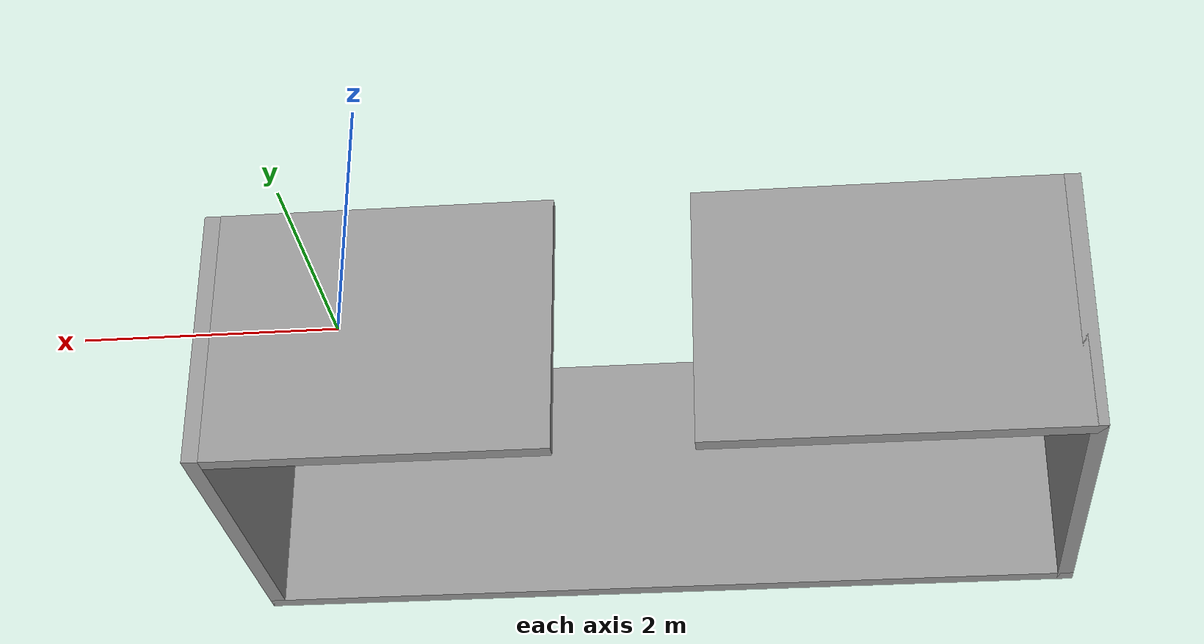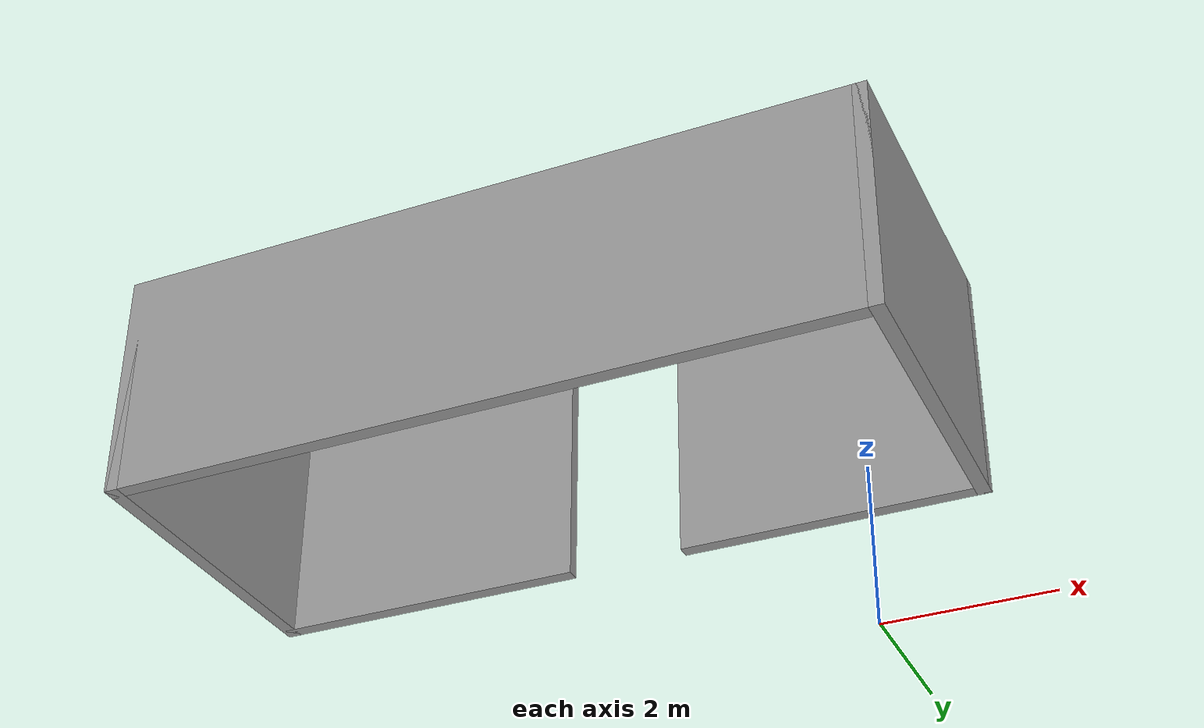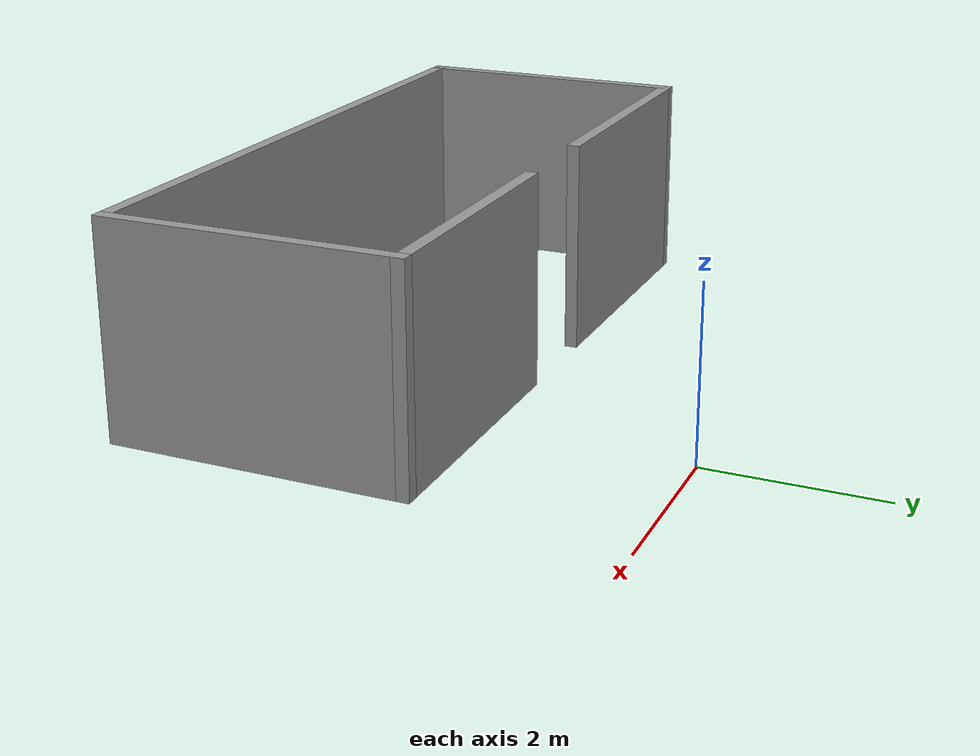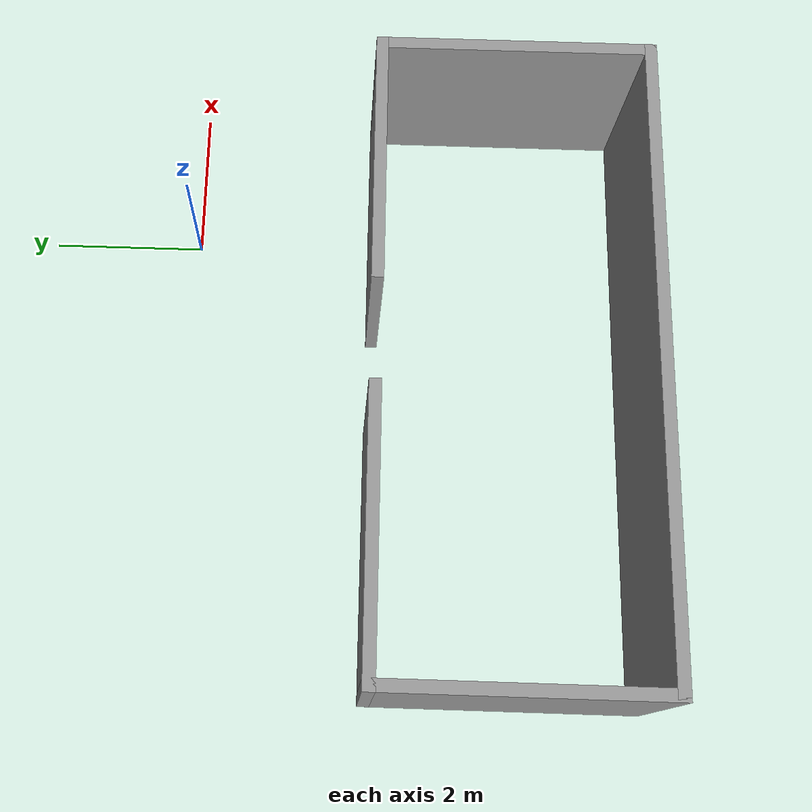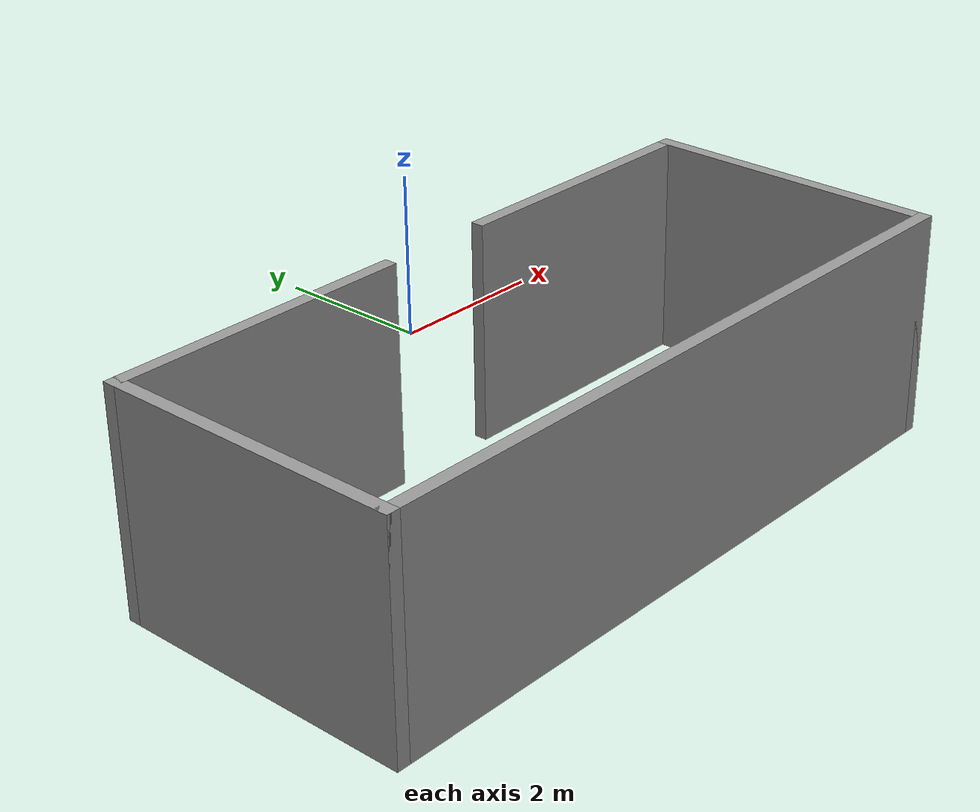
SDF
<?xml version='1.0'?>
<sdf version='1.7'>
  <model name='pap5-1'>
    <pose>-2.10977 -2.90333 0 0 -0 0</pose>
    <link name='Wall_10'>
      <collision name='Wall_10_Collision'>
        <geometry>
          <box>
            <size>3.5 0.15 2.5</size>
          </box>
        </geometry>
        <pose>0 0 1.25 0 -0 0</pose>
      </collision>
      <visual name='Wall_10_Visual'>
        <pose>0 0 1.25 0 -0 0</pose>
        <geometry>
          <box>
            <size>3.5 0.15 2.5</size>
          </box>
        </geometry>
        <material>
          <script>
            <uri>file://media/materials/scripts/gazebo.material</uri>
            <name>Gazebo/Grey</name>
          </script>
          <ambient>1 1 1 1</ambient>
        </material>
        <meta>
          <layer>0</layer>
        </meta>
      </visual>
      <pose>3.925 -1.15332 0 0 -0 1.5708</pose>
    </link>
    <link name='Wall_11'>
      <collision name='Wall_11_Collision'>
        <geometry>
          <box>
            <size>3.25 0.15 2.5</size>
          </box>
        </geometry>
        <pose>0 0 1.25 0 -0 0</pose>
      </collision>
      <visual name='Wall_11_Visual'>
        <pose>0 0 1.25 0 -0 0</pose>
        <geometry>
          <box>
            <size>3.25 0.15 2.5</size>
          </box>
        </geometry>
        <material>
          <script>
            <uri>file://media/materials/scripts/gazebo.material</uri>
            <name>Gazebo/Grey</name>
          </script>
          <ambient>1 1 1 1</ambient>
        </material>
        <meta>
          <layer>0</layer>
        </meta>
      </visual>
      <pose>2.375 0.521675 0 0 -0 3.14159</pose>
    </link>
    <link name='Wall_7'>
      <collision name='Wall_7_Collision'>
        <geometry>
          <box>
            <size>3.5 0.15 2.5</size>
          </box>
        </geometry>
        <pose>0 0 1.25 0 -0 0</pose>
      </collision>
      <visual name='Wall_7_Visual'>
        <pose>0 0 1.25 0 -0 0</pose>
        <geometry>
          <box>
            <size>3.5 0.15 2.5</size>
          </box>
        </geometry>
        <material>
          <script>
            <uri>file://media/materials/scripts/gazebo.material</uri>
            <name>Gazebo/Grey</name>
          </script>
          <ambient>1 1 1 1</ambient>
        </material>
        <meta>
          <layer>0</layer>
        </meta>
      </visual>
      <pose>-2.25 0.521675 0 0 -0 3.14159</pose>
    </link>
    <link name='Wall_8'>
      <collision name='Wall_8_Collision'>
        <geometry>
          <box>
            <size>3.5 0.15 2.5</size>
          </box>
        </geometry>
        <pose>0 0 1.25 0 -0 0</pose>
      </collision>
      <visual name='Wall_8_Visual'>
        <pose>0 0 1.25 0 -0 0</pose>
        <geometry>
          <box>
            <size>3.5 0.15 2.5</size>
          </box>
        </geometry>
        <material>
          <script>
            <uri>file://media/materials/scripts/gazebo.material</uri>
            <name>Gazebo/Grey</name>
          </script>
          <ambient>1 1 1 1</ambient>
        </material>
        <meta>
          <layer>0</layer>
        </meta>
      </visual>
      <pose>-3.925 -1.15332 0 0 -0 -1.5708</pose>
    </link>
    <link name='Wall_9'>
      <collision name='Wall_9_Collision'>
        <geometry>
          <box>
            <size>8 0.15 2.5</size>
          </box>
        </geometry>
        <pose>0 0 1.25 0 -0 0</pose>
      </collision>
      <visual name='Wall_9_Visual'>
        <pose>0 0 1.25 0 -0 0</pose>
        <geometry>
          <box>
            <size>8 0.15 2.5</size>
          </box>
        </geometry>
        <material>
          <script>
            <uri>file://media/materials/scripts/gazebo.material</uri>
            <name>Gazebo/Grey</name>
          </script>
          <ambient>1 1 1 1</ambient>
        </material>
        <meta>
          <layer>0</layer>
        </meta>
      </visual>
      <pose>-0 -2.82832 0 0 -0 0</pose>
    </link>
    <static>1</static>
  </model>
</sdf>
